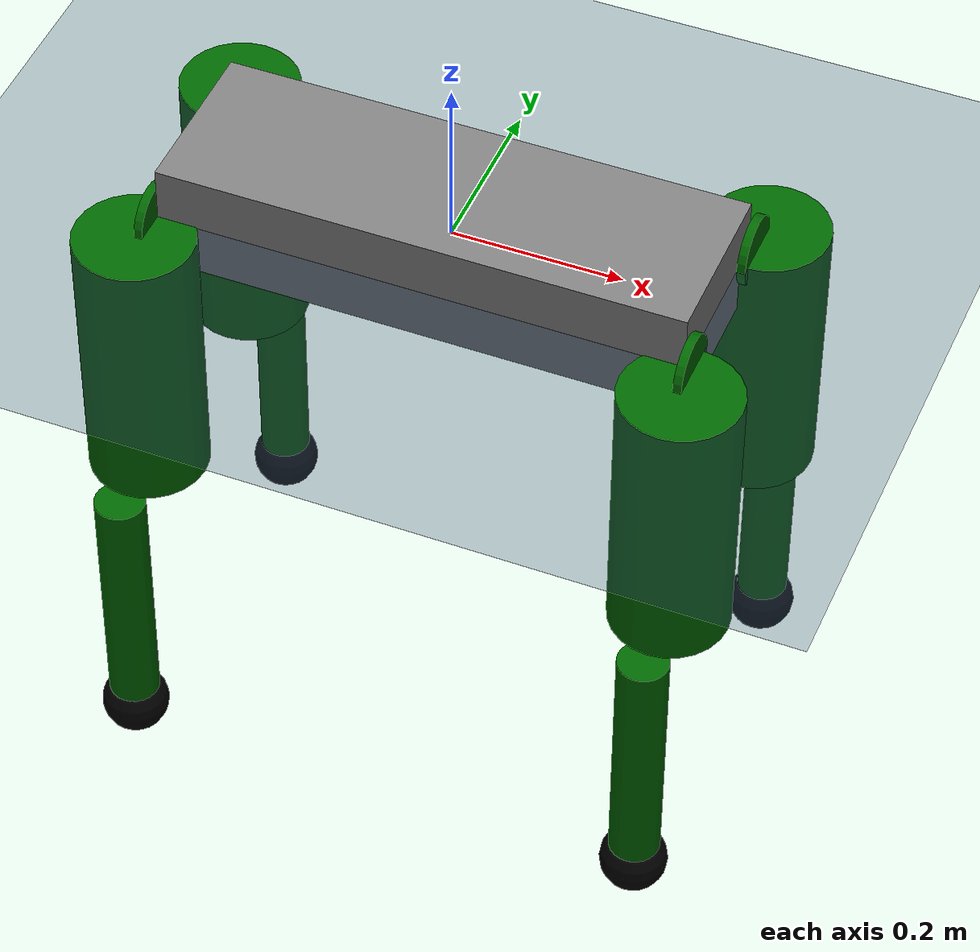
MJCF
<mujoco model="simple_ghost_v60">
  <compiler angle="radian" autolimits="true"/>
  <statistic meansize="0.233652" extent="1.00882" center="0 0 -0.175588"/>
    <asset>
    <texture type="skybox" builtin="gradient" rgb1="0.3 0.5 0.7" rgb2="0 0 0" width="32" height="192"/>
    <texture type="cube" name="body" builtin="flat" mark="cross" rgb1="0.8 0.6 0.4" rgb2="0.8 0.6 0.4" markrgb="1 1 1" width="127" height="762"/>
    <texture type="2d" name="grid" builtin="checker" rgb1="0.1 0.2 0.3" rgb2="0.2 0.3 0.4" width="512" height="512"/>
    <material name="body" texture="body" texuniform="true" rgba="0.8 0.6 0.4 1"/>
    <material name="grid" texture="grid" texuniform="true" reflectance="0.2"/>

  </asset>
  <worldbody>
    <geom name="floor" size="0 0 1" type="plane" material="grid" />

    <light name="spotlight" target="simple_ghost_v60/base_link_inertia" pos="0 -6 6" dir="0 0 -1" cutoff="30" diffuse="0.8 0.8 0.8" mode="targetbodycom"/>

    <body name="simple_ghost_v60/base_link_inertia">
      <site name="sensorsurf" pos="0 0 0" size=".005 .005 .005" rgba="0.5 0.5 0.5 1" euler="0 0 0"/>

      <joint name="simple_ghost_v60/base_joint" pos="0 0 0" type="free"/>

      <inertial pos="0 0 0" quat="0 0.707107 0 0.707107" mass="25" diaginertia="0.876693 0.828568 0.118542"/>
      <geom size="0.30855 0.1 0.065" type="box"/>
    <body name="simple_ghost_v60/abad_1" pos="0.30855 -0.1 0">
      <inertial pos="0.005 0 0" mass="1" diaginertia="0.0434333 0.0434333 0.0098"/>
      <joint name="simple_ghost_v60/abad_1_joint" pos="0 0 0" axis="1 0 0" range="-3.14159 3.14159" damping="0.03" frictionloss="0.05"/>
      <geom size="0.04 0.005" pos="0.005 0 0" quat="0.707388 0 -0.706825 0" type="cylinder" rgba="0 0.4 0 1"/>
      <body name="simple_ghost_v60/hip_1" pos="0.01 -0.04 0" quat="0.000796327 0 0 1">
        <inertial pos="0 0 -0.17" mass="4" diaginertia="0.0434333 0.0434333 0.0098"/>
        <joint name="simple_ghost_v60/hip_1_joint" pos="0 0 0" axis="0 1 0" range="-3.14159 3.14159" damping="0.03" frictionloss="0.05"/>
        <geom size="0.07 0.17" pos="0 0 -0.17" quat="4.63268e-05 0 0 1" type="cylinder" rgba="0 0.4 0 1"/>
        <body name="simple_ghost_v60/knee_1" pos="0 0.08024 -0.34">
          <inertial pos="0 0.00776677 -0.0700523" quat="1 -5.56931e-06 0 0" mass="2.0001" diaginertia="0.019724 0.019724 0.000900016"/>
          <joint name="simple_ghost_v60/knee_1_joint" pos="0 0 0" axis="0 1 0" range="-3.14159 3.14159" damping="0.03" frictionloss="0.05"/>
          <geom size="0.03 0.17" pos="0 0 -0.17" quat="4.63268e-05 0 0 1" type="cylinder" rgba="0 0.4 0 1"/>
          <geom size="0.04" pos="0 0 -0.34" rgba="0 0 0 0.9"/>
        </body>
      </body>
    </body>
    <body name="simple_ghost_v60/abad_2" pos="0.30855 0.1 0">
      <inertial pos="0.005 0 0" mass="1" diaginertia="0.0434333 0.0434333 0.0098"/>
      <joint name="simple_ghost_v60/abad_2_joint" pos="0 0 0" axis="1 0 0" range="-3.14159 3.14159" damping="0.03" frictionloss="0.05"/>
      <geom size="0.04 0.005" pos="0.005 0 0" quat="0.707388 0 -0.706825 0" type="cylinder" rgba="0 0.4 0 1"/>
      <body name="simple_ghost_v60/hip_2" pos="0.01 0.04 0" quat="0.000796327 0 0 1">
        <inertial pos="0 0 -0.17" mass="4" diaginertia="0.0434333 0.0434333 0.0098"/>
        <joint name="simple_ghost_v60/hip_2_joint" pos="0 0 0" axis="0 1 0" range="-3.14159 3.14159" damping="0.03" frictionloss="0.05"/>
        <geom size="0.07 0.17" pos="0 0 -0.17" quat="4.63268e-05 0 0 1" type="cylinder" rgba="0 0.4 0 1"/>
        <body name="simple_ghost_v60/knee_2" pos="0 -0.08024 -0.34">
          <inertial pos="0 -0.00776677 -0.0700523" quat="1 5.56931e-06 0 0" mass="2.0001" diaginertia="0.019724 0.019724 0.000900016"/>
          <joint name="simple_ghost_v60/knee_2_joint" pos="0 0 0" axis="0 1 0" range="-3.14159 3.14159" damping="0.03" frictionloss="0.05"/>
          <geom size="0.03 0.17" pos="0 0 -0.17" quat="4.63268e-05 0 0 1" type="cylinder" rgba="0 0.4 0 1"/>
          <geom size="0.04" pos="0 0 -0.34" rgba="0 0 0 0.9"/>
        </body>
      </body>
    </body>
    <body name="simple_ghost_v60/abad_3" pos="-0.30855 -0.1 0">
      <inertial pos="-0.005 0 0" mass="1" diaginertia="0.0434333 0.0434333 0.0098"/>
      <joint name="simple_ghost_v60/abad_3_joint" pos="0 0 0" axis="1 0 0" range="-3.14159 3.14159" damping="0.03" frictionloss="0.05"/>
      <geom size="0.04 0.005" pos="-0.005 0 0" quat="0.707388 0 -0.706825 0" type="cylinder" rgba="0 0.4 0 1"/>
      <body name="simple_ghost_v60/hip_3" pos="-0.01 -0.04 0" quat="0.000796327 0 0 1">
        <inertial pos="0 0 -0.17" mass="4" diaginertia="0.0434333 0.0434333 0.0098"/>
        <joint name="simple_ghost_v60/hip_3_joint" pos="0 0 0" axis="0 1 0" range="-3.14159 3.14159" damping="0.03" frictionloss="0.05"/>
        <geom size="0.07 0.17" pos="0 0 -0.17" quat="4.63268e-05 0 0 1" type="cylinder" rgba="0 0.4 0 1"/>
        <body name="simple_ghost_v60/knee_3" pos="0 0.08024 -0.34">
          <inertial pos="0 0.00776677 -0.0700523" quat="1 -5.56931e-06 0 0" mass="2.0001" diaginertia="0.019724 0.019724 0.000900016"/>
          <joint name="simple_ghost_v60/knee_3_joint" pos="0 0 0" axis="0 1 0" range="-3.14159 3.14159" damping="0.03" frictionloss="0.05"/>
          <geom size="0.03 0.17" pos="0 0 -0.17" quat="4.63268e-05 0 0 1" type="cylinder" rgba="0 0.4 0 1"/>
          <geom size="0.04" pos="0 0 -0.34" rgba="0 0 0 0.9"/>
        </body>
      </body>
    </body>
    <body name="simple_ghost_v60/abad_4" pos="-0.30855 0.1 0">
      <inertial pos="-0.005 0 0" mass="1" diaginertia="0.0434333 0.0434333 0.0098"/>
      <joint name="simple_ghost_v60/abad_4_joint" pos="0 0 0" axis="1 0 0" range="-3.14159 3.14159" damping="0.03" frictionloss="0.05"/>
      <geom size="0.04 0.005" pos="-0.005 0 0" quat="0.707388 0 -0.706825 0" type="cylinder" rgba="0 0.4 0 1"/>
      <body name="simple_ghost_v60/hip_4" pos="-0.01 0.04 0" quat="0.000796327 0 0 1">
        <inertial pos="0 0 -0.17" mass="4" diaginertia="0.0434333 0.0434333 0.0098"/>
        <joint name="simple_ghost_v60/hip_4_joint" pos="0 0 0" axis="0 1 0" range="-3.14159 3.14159" damping="0.03" frictionloss="0.05"/>
        <geom size="0.07 0.17" pos="0 0 -0.17" quat="4.63268e-05 0 0 1" type="cylinder" rgba="0 0.4 0 1"/>
        <body name="simple_ghost_v60/knee_4" pos="0 -0.08024 -0.34">
          <inertial pos="0 -0.00776677 -0.0700523" quat="1 5.56931e-06 0 0" mass="2.0001" diaginertia="0.019724 0.019724 0.000900016"/>
          <joint name="simple_ghost_v60/knee_4_joint" pos="0 0 0" axis="0 1 0" range="-3.14159 3.14159" damping="0.03" frictionloss="0.05"/>
          <geom size="0.03 0.17" pos="0 0 -0.17" quat="4.63268e-05 0 0 1" type="cylinder" rgba="0 0.4 0 1"/>
          <geom size="0.04" pos="0 0 -0.34" rgba="0 0 0 0.9"/>
        </body>
      </body>
    </body>
    </body>

  </worldbody>
    <actuator>
    <motor name="simple_ghost_v60/abad_1_torque" joint="simple_ghost_v60/abad_1_joint" forcelimited="true" forcerange="-125 125"/>
    <position name="simple_ghost_v60/abad_1_pos" joint="simple_ghost_v60/abad_1_joint" kp="0" />
    <velocity name="simple_ghost_v60/abad_1_vel" joint="simple_ghost_v60/abad_1_joint" kv="0" />
    <motor name="simple_ghost_v60/hip_1_joint" joint="simple_ghost_v60/hip_1_joint"  forcelimited="true" forcerange="-125 125"  />
    <position name="simple_ghost_v60/hip_1_pos" joint="simple_ghost_v60/hip_1_joint" kp="0" />
    <velocity name="simple_ghost_v60/hip_1_vel" joint="simple_ghost_v60/hip_1_joint" kv="0" />

    <motor name="simple_ghost_v60/knee_1_joint" joint="simple_ghost_v60/knee_1_joint"  forcelimited="true" forcerange="-125 125" />
    <position name="simple_ghost_v60/knee_1_pos" joint="simple_ghost_v60/knee_1_joint" kp="0" />
    <velocity name="simple_ghost_v60/knee_1_vel" joint="simple_ghost_v60/knee_1_joint" kv="0" />

    <motor name="simple_ghost_v60/abad_2_torque" joint="simple_ghost_v60/abad_2_joint" forcelimited="true" forcerange="-125 125"/>
    <position name="simple_ghost_v60/abad_2_pos" joint="simple_ghost_v60/abad_2_joint" kp="0" />
    <velocity name="simple_ghost_v60/abad_2_vel" joint="simple_ghost_v60/abad_2_joint" kv="0" />
    <motor name="simple_ghost_v60/hip_2_joint" joint="simple_ghost_v60/hip_2_joint"  forcelimited="true" forcerange="-125 125"  />
    <position name="simple_ghost_v60/hip_2_pos" joint="simple_ghost_v60/hip_2_joint" kp="0" />
    <velocity name="simple_ghost_v60/hip_2_vel" joint="simple_ghost_v60/hip_2_joint" kv="0" />

    <motor name="simple_ghost_v60/knee_2_joint" joint="simple_ghost_v60/knee_2_joint"  forcelimited="true" forcerange="-125 125" />
    <position name="simple_ghost_v60/knee_2_pos" joint="simple_ghost_v60/knee_2_joint" kp="0" />
    <velocity name="simple_ghost_v60/knee_2_vel" joint="simple_ghost_v60/knee_2_joint" kv="0" />

    <motor name="simple_ghost_v60/abad_3_torque" joint="simple_ghost_v60/abad_3_joint" forcelimited="true" forcerange="-125 125"/>
    <position name="simple_ghost_v60/abad_3_pos" joint="simple_ghost_v60/abad_3_joint" kp="0" />
    <velocity name="simple_ghost_v60/abad_3_vel" joint="simple_ghost_v60/abad_3_joint" kv="0" />

    <motor name="simple_ghost_v60/hip_3_joint" joint="simple_ghost_v60/hip_3_joint"  forcelimited="true" forcerange="-125 125"  />
    <position name="simple_ghost_v60/hip_3_pos" joint="simple_ghost_v60/hip_3_joint" kp="0" />
    <velocity name="simple_ghost_v60/hip_3_vel" joint="simple_ghost_v60/hip_3_joint" kv="0" />

    <motor name="simple_ghost_v60/knee_3_joint" joint="simple_ghost_v60/knee_3_joint"  forcelimited="true" forcerange="-125 125" />
    <position name="simple_ghost_v60/knee_3_pos" joint="simple_ghost_v60/knee_3_joint" kp="0" />
    <velocity name="simple_ghost_v60/knee_3_vel" joint="simple_ghost_v60/knee_3_joint" kv="0" />

    <motor name="simple_ghost_v60/abad_4_torque" joint="simple_ghost_v60/abad_4_joint" forcelimited="true" forcerange="-125 125"/>
    <position name="simple_ghost_v60/abad_4_pos" joint="simple_ghost_v60/abad_4_joint" kp="0" />
    <velocity name="simple_ghost_v60/abad_4_vel" joint="simple_ghost_v60/abad_4_joint" kv="0" />

    <motor name="simple_ghost_v60/hip_4_joint" joint="simple_ghost_v60/hip_4_joint"  forcelimited="true" forcerange="-125 125"  />
    <position name="simple_ghost_v60/hip_4_pos" joint="simple_ghost_v60/hip_4_joint" kp="0" />
    <velocity name="simple_ghost_v60/hip_4_vel" joint="simple_ghost_v60/hip_4_joint" kv="0" />

    <motor name="simple_ghost_v60/knee_4_joint" joint="simple_ghost_v60/knee_4_joint"  forcelimited="true" forcerange="-125 125" />
    <position name="simple_ghost_v60/knee_4_pos" joint="simple_ghost_v60/knee_4_joint" kp="0" />
    <velocity name="simple_ghost_v60/knee_4_vel" joint="simple_ghost_v60/knee_4_joint" kv="0" />

  </actuator>

  <contact>
  <exclude body1="simple_ghost_v60/hip_1" body2="simple_ghost_v60/base_link_inertia" />
  <exclude body1="simple_ghost_v60/hip_2" body2="simple_ghost_v60/base_link_inertia" />
  <exclude body1="simple_ghost_v60/hip_3" body2="simple_ghost_v60/base_link_inertia" />
  <exclude body1="simple_ghost_v60/hip_4" body2="simple_ghost_v60/base_link_inertia" />

  <exclude body1="simple_ghost_v60/knee_1" body2="simple_ghost_v60/base_link_inertia" />
  <exclude body1="simple_ghost_v60/knee_2" body2="simple_ghost_v60/base_link_inertia" />
  <exclude body1="simple_ghost_v60/knee_3" body2="simple_ghost_v60/base_link_inertia" />
  <exclude body1="simple_ghost_v60/knee_4" body2="simple_ghost_v60/base_link_inertia" />

  </contact>
  <sensor>
  <accelerometer name="acc" site="sensorsurf" />
  <gyro site="sensorsurf" />
  <framequat name="quat" objtype="body" objname="simple_ghost_v60/base_link_inertia" />
  </sensor>

</mujoco>
